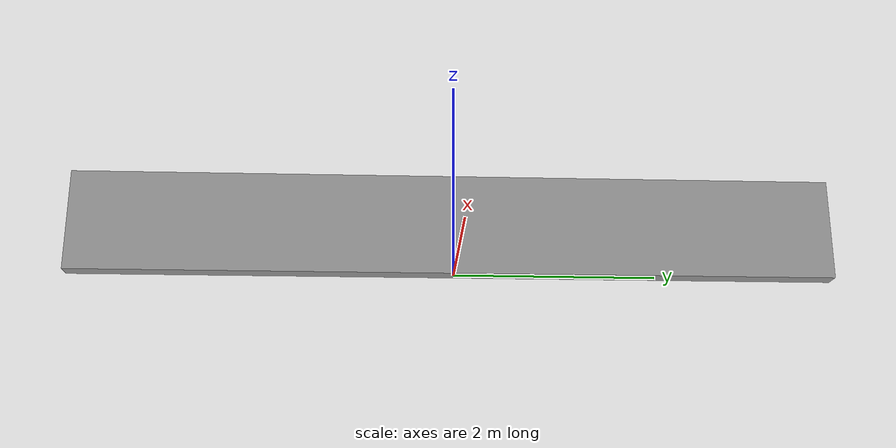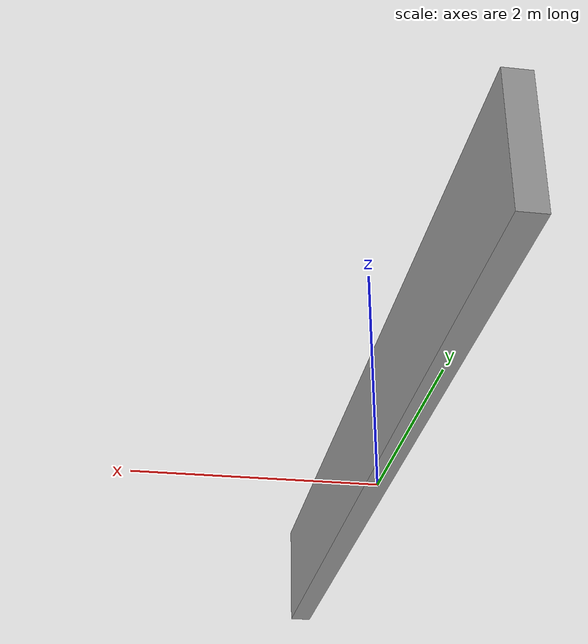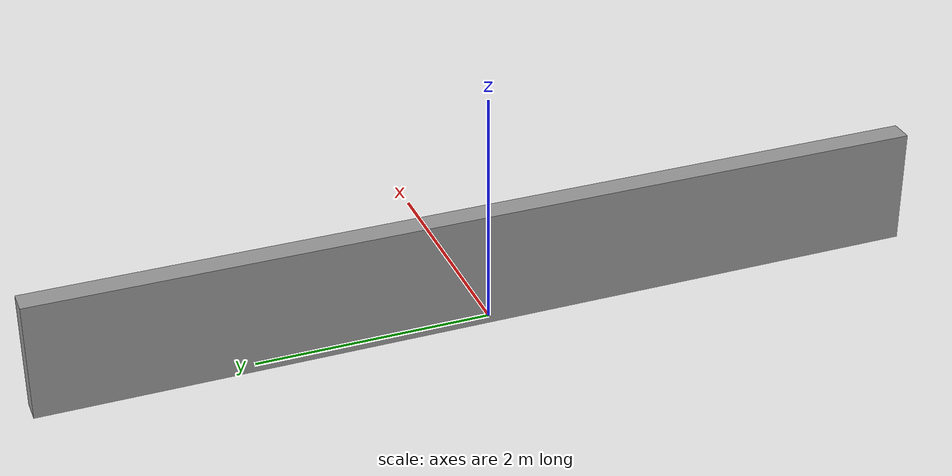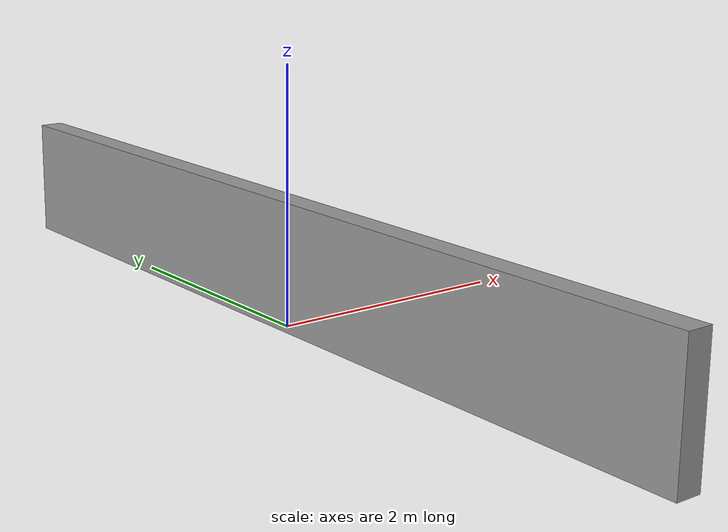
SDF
<?xml version="1.0" ?>
<sdf version="1.5">
  <model name="grey_wall">
    <static>true</static>
    <link name="link">
      <pose>0 0 0.5 0 0 0</pose>
      <collision name="collision">
        <geometry>
          <box>
            <size>0.2 7.61 1</size>
          </box>
        </geometry>
      </collision>
      <visual name="visual">
        <cast_shadows>false</cast_shadows>
        <geometry>
          <box>
            <size>0.2 7.61 1</size>
          </box>
        </geometry>
        <material>
          <script>
            <uri>model://sim_world/models/grey_wall/materials/scripts</uri>
            <uri>model://sim_world/models/grey_wall/materials/textures</uri>
            <name>vrc/grey_wall</name>
          </script>
        </material>
      </visual>
    </link>
  </model>
</sdf>
